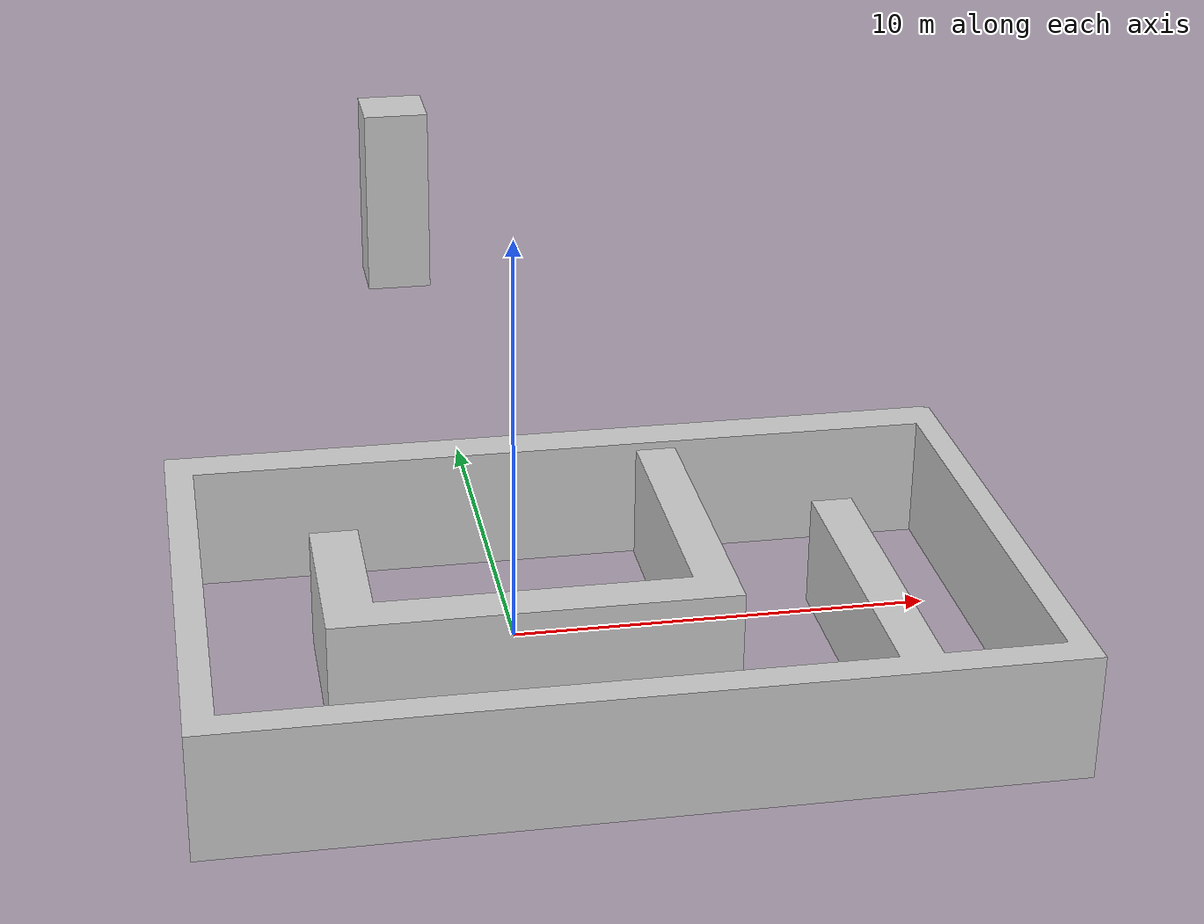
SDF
<?xml version='1.0'?>
<sdf version='1.5'>
  <model name='building_curve'>
    <static>true</static>
    <link name="curve1">
      <visual name="visual">
            <geometry>
                <mesh>
                    <uri>model://home/user/catkin_ws/src/am_gazebo/worlds/map.dae</uri>
                </mesh>
            </geometry>
        </visual>
        <collision name="collision">
            <geometry>
                <mesh>
                    <uri>model://home/user/catkin_ws/src/am_gazebo/worlds/map.dae</uri>
                </mesh>
            </geometry>
        </collision>
    </link>
  </model>
</sdf>
